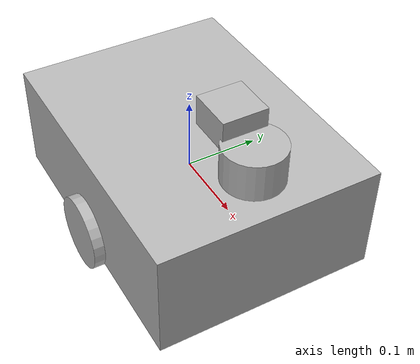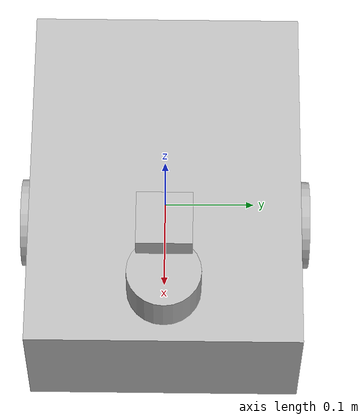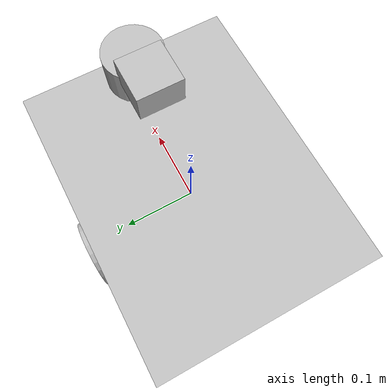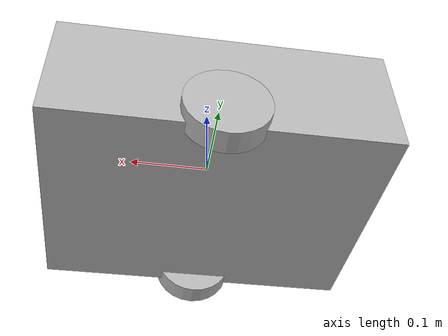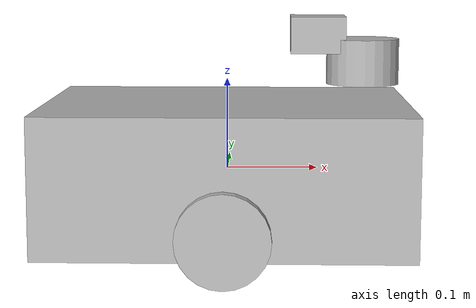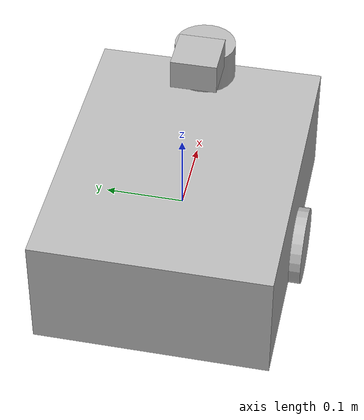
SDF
<sdf version='1.11'>
  <model name='mobile_robot'>
    <link name='base_link'>
      <inertial>
        <pose>0.0043859649122807024 0 0.0003508771929824559 0 0 0</pose>
        <mass>11.4</mass>
        <inertia>
          <ixx>0.13457859649122811</ixx>
          <ixy>0</ixy>
          <ixz>-0.0065824561403508772</ixz>
          <iyy>0.118359298245614</iyy>
          <iyz>4.3368086899420177e-19</iyz>
          <izz>0.130980701754386</izz>
        </inertia>
      </inertial>
      <collision name='base_link_collision'>
        <pose>0 0 0 0 0 0</pose>
        <geometry>
          <box>
            <size>0.40000000000000002 0.29999999999999999 0.14999999999999999</size>
          </box>
        </geometry>
      </collision>
      <collision name='base_link_fixed_joint_lump__camera_link_collision_1'>
        <pose>0.10000000000000001 0 0.14999999999999999 0 0 0</pose>
        <geometry>
          <box>
            <size>0.059999999999999998 0.059999999999999998 0.040000000000000001</size>
          </box>
        </geometry>
      </collision>
      <collision name='base_link_fixed_joint_lump__left_wheel_collision_2'>
        <pose>0 0.14999999999999999 -0.050000000000000003 1.5708 0 0</pose>
        <geometry>
          <cylinder>
            <length>0.029999999999999999</length>
            <radius>0.050000000000000003</radius>
          </cylinder>
        </geometry>
      </collision>
      <collision name='base_link_fixed_joint_lump__lidar_link_collision_3'>
        <pose>0.14999999999999999 0 0.12 0 0 0</pose>
        <geometry>
          <cylinder>
            <length>0.050000000000000003</length>
            <radius>0.040000000000000001</radius>
          </cylinder>
        </geometry>
      </collision>
      <collision name='base_link_fixed_joint_lump__right_wheel_collision_4'>
        <pose>0 -0.14999999999999999 -0.050000000000000003 1.5708 0 0</pose>
        <geometry>
          <cylinder>
            <length>0.029999999999999999</length>
            <radius>0.050000000000000003</radius>
          </cylinder>
        </geometry>
      </collision>
      <visual name='base_link_visual'>
        <pose>0 0 0 0 0 0</pose>
        <geometry>
          <box>
            <size>0.40000000000000002 0.29999999999999999 0.14999999999999999</size>
          </box>
        </geometry>
      </visual>
      <visual name='base_link_fixed_joint_lump__camera_link_visual_1'>
        <pose>0.10000000000000001 0 0.14999999999999999 0 0 0</pose>
        <geometry>
          <box>
            <size>0.059999999999999998 0.059999999999999998 0.040000000000000001</size>
          </box>
        </geometry>
      </visual>
      <visual name='base_link_fixed_joint_lump__left_wheel_visual_2'>
        <pose>0 0.14999999999999999 -0.050000000000000003 1.5708 0 0</pose>
        <geometry>
          <cylinder>
            <length>0.029999999999999999</length>
            <radius>0.050000000000000003</radius>
          </cylinder>
        </geometry>
      </visual>
      <visual name='base_link_fixed_joint_lump__lidar_link_visual_3'>
        <pose>0.14999999999999999 0 0.12 0 0 0</pose>
        <geometry>
          <cylinder>
            <length>0.050000000000000003</length>
            <radius>0.040000000000000001</radius>
          </cylinder>
        </geometry>
      </visual>
      <visual name='base_link_fixed_joint_lump__right_wheel_visual_4'>
        <pose>0 -0.14999999999999999 -0.050000000000000003 1.5708 0 0</pose>
        <geometry>
          <cylinder>
            <length>0.029999999999999999</length>
            <radius>0.050000000000000003</radius>
          </cylinder>
        </geometry>
      </visual>
    </link>
    <frame name='camera_optical_joint' attached_to='camera_link'>
      <pose>0 0 0 -1.5708 -5.5511151231257827e-17 -1.5708</pose>
    </frame>
    <frame name='camera_optical_frame' attached_to='camera_optical_joint'>
      <pose>0 0 0 0 0 0</pose>
    </frame>
    <frame name='camera_joint' attached_to='base_link'>
      <pose>0.10000000000000001 0 0.14999999999999999 0 0 0</pose>
    </frame>
    <frame name='camera_link' attached_to='camera_joint'>
      <pose>0 0 0 0 0 0</pose>
    </frame>
    <frame name='left_wheel_joint' attached_to='base_link'>
      <pose>0 0.14999999999999999 -0.050000000000000003 0 0 0</pose>
    </frame>
    <frame name='left_wheel' attached_to='left_wheel_joint'>
      <pose>0 0 0 0 0 0</pose>
    </frame>
    <frame name='laser_joint' attached_to='lidar_link'>
      <pose>0 0 0 0 0 0</pose>
    </frame>
    <frame name='laser_frame' attached_to='laser_joint'>
      <pose>0 0 0 0 0 0</pose>
    </frame>
    <frame name='lidar_joint' attached_to='base_link'>
      <pose>0.14999999999999999 0 0.12 0 0 0</pose>
    </frame>
    <frame name='lidar_link' attached_to='lidar_joint'>
      <pose>0 0 0 0 0 0</pose>
    </frame>
    <frame name='right_wheel_joint' attached_to='base_link'>
      <pose>0 -0.14999999999999999 -0.050000000000000003 0 0 0</pose>
    </frame>
    <frame name='right_wheel' attached_to='right_wheel_joint'>
      <pose>0 0 0 0 0 0</pose>
    </frame>
  </model>
</sdf>
